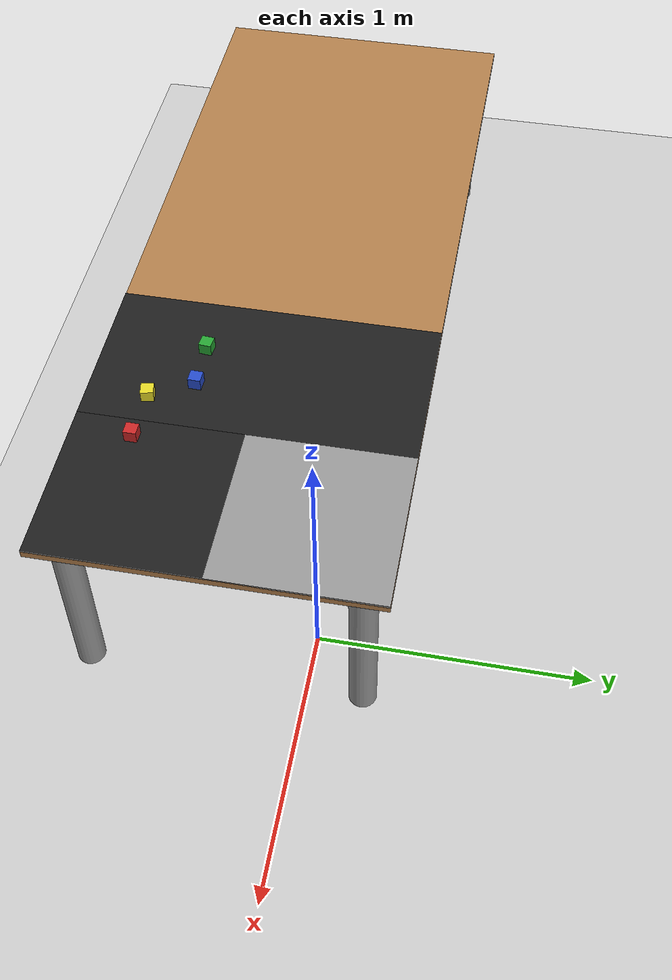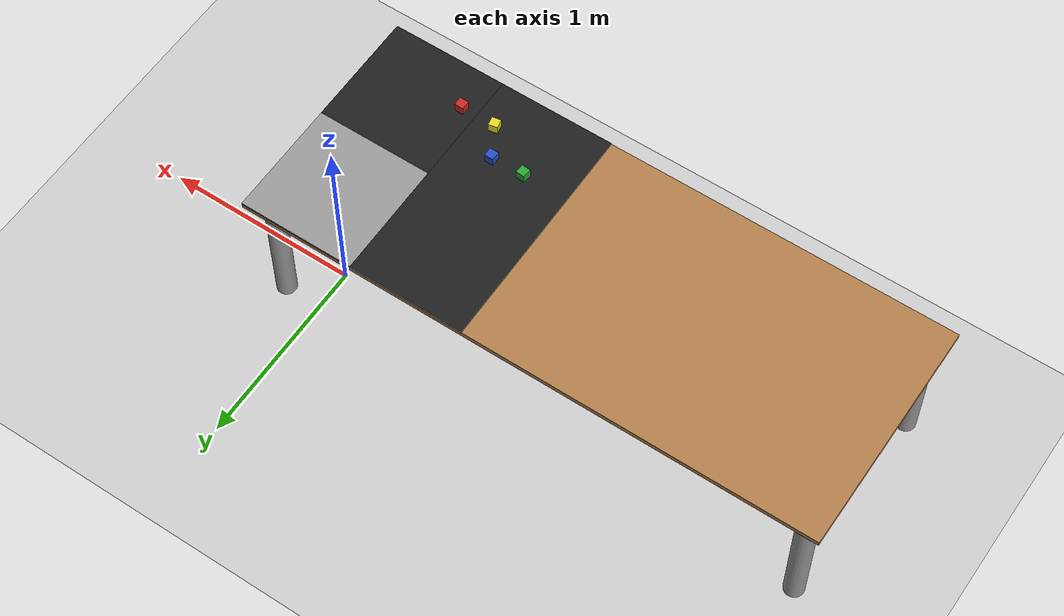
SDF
<sdf version="1.6">
 <world name="default">
  <light name="sun" type="directional">
   <pose>0 0 10 0 -0 0</pose>
   <diffuse>0.8 0.8 0.8 1</diffuse>
   <specular>0.1 0.1 0.1 1</specular>
   <attenuation>
    <range>1000</range>
    <constant>0.9</constant>
    <linear>0.01</linear>
    <quadratic>0.001</quadratic>
   </attenuation>
   <direction>-0.5 0.5 -1</direction>
  </light>
  <model name="ground_plane">
   <static>1</static>
   <link name="link">
    <collision name="collision">
     <geometry><plane><normal>0 0 1</normal><size>100 100</size></plane></geometry>
     <surface><friction><ode><mu>100</mu><mu2>50</mu2></ode></friction></surface>
    </collision>
    <visual name="visual">
     <cast_shadows>0</cast_shadows>
     <geometry><plane><normal>0 0 1</normal><size>100 100</size></plane></geometry>
     <material>
      <script><uri>file://media/materials/scripts/gazebo.material</uri><name>Gazebo/Grey</name></script>
     </material>
    </visual>
   </link>
  </model>
  <gravity>0 0 -9.8</gravity>
  <magnetic_field>6e-06 2.3e-05 -4.2e-05</magnetic_field>
  <atmosphere type="adiabatic"/>
  <physics name="default_physics" default="0" type="ode">
   <max_step_size>0.001</max_step_size>
   <real_time_factor>1</real_time_factor>
   <real_time_update_rate>1000</real_time_update_rate>
  </physics>
  <scene><ambient>0.4 0.4 0.4 1</ambient><background>0.7 0.7 0.7 1</background><shadows>1</shadows></scene>
  <spherical_coordinates>
   <surface_model>EARTH_WGS84</surface_model>
   <latitude_deg>0</latitude_deg>
   <longitude_deg>0</longitude_deg>
   <elevation>0</elevation>
   <heading_deg>0</heading_deg>
  </spherical_coordinates>
  <model name="table_custom_4_2">
   <link name="link">
    <inertial>
     <inertia><ixx>10</ixx><ixy>0</ixy><ixz>0</ixz><iyy>10</iyy><iyz>0</iyz><izz>10</izz></inertia>
     <mass>10</mass>
    </inertial>
    <self_collide>1</self_collide>
    <visual name="ModelPreview_20::link::visual_7">
     <pose>0.6 0 0.746 0 -0 0</pose>
     <geometry><box><size>0.6 1.2 0.01</size></box></geometry>
     <material>
      <script><uri>file://media/materials/scripts/gazebo.material</uri><name>Gazebo/Black</name></script>
      <ambient>0 0 0 1</ambient>
      <diffuse>0 0 0 1</diffuse>
      <specular>0.2 0.2 0.2 1</specular>
      <emissive>0 0 0 1</emissive>
      <shader type="vertex"><normal_map>__default__</normal_map></shader>
     </material>
    </visual>
    <visual name="back_right_leg">
     <pose>-1.4 -0.5 0.36 0 -0 0</pose>
     <geometry><cylinder><radius>0.05</radius><length>0.72</length></cylinder></geometry>
     <material>
      <script><uri>file://media/materials/scripts/gazebo.material</uri><name>Gazebo/Grey</name></script>
      <ambient>0.3 0.3 0.3 1</ambient>
      <diffuse>0.7 0.7 0.7 1</diffuse>
      <specular>0.01 0.01 0.01 1</specular>
      <emissive>0 0 0 1</emissive>
      <shader type="vertex"><normal_map>__default__</normal_map></shader>
     </material>
    </visual>
    <visual name="back_left_leg">
     <pose>-1.4 0.5 0.36 0 -0 0</pose>
     <geometry><cylinder><radius>0.05</radius><length>0.72</length></cylinder></geometry>
     <material>
      <script><uri>file://media/materials/scripts/gazebo.material</uri><name>Gazebo/Grey</name></script>
      <ambient>0.3 0.3 0.3 1</ambient>
      <diffuse>0.7 0.7 0.7 1</diffuse>
      <specular>0.01 0.01 0.01 1</specular>
      <emissive>0 0 0 1</emissive>
      <shader type="vertex"><normal_map>__default__</normal_map></shader>
     </material>
    </visual>
    <visual name="visual1">
     <pose>0 0 0.733 0 -0 0</pose>
     <geometry><box><size>3 1.2 0.026</size></box></geometry>
     <material>
      <script><uri>file://media/materials/scripts/gazebo.material</uri><name>Gazebo/Wood</name></script>
      <ambient>1 1 1 1</ambient>
      <diffuse>1 1 1 1</diffuse>
      <specular>0.2 0.2 0.2 1</specular>
      <emissive>0 0 0 1</emissive>
      <shader type="vertex"><normal_map>__default__</normal_map></shader>
     </material>
    </visual>
    <visual name="ModelPreview_4::link::visual_5">
     <pose>1.2 0.3 0.746 0 -0 0</pose>
     <geometry><box><size>0.6 0.6 0.01</size></box></geometry>
     <material>
      <script><uri>file://media/materials/scripts/gazebo.material</uri><name>Gazebo/Grey</name></script>
      <ambient>0.3 0.3 0.3 1</ambient>
      <diffuse>0.7 0.7 0.7 1</diffuse>
      <specular>0.01 0.01 0.01 1</specular>
      <emissive>0 0 0 1</emissive>
      <shader type="vertex"><normal_map>__default__</normal_map></shader>
     </material>
    </visual>
    <visual name="front_right_leg">
     <pose>1.4 -0.5 0.36 0 -0 0</pose>
     <geometry><cylinder><radius>0.05</radius><length>0.72</length></cylinder></geometry>
     <material>
      <script><uri>file://media/materials/scripts/gazebo.material</uri><name>Gazebo/Grey</name></script>
      <ambient>0.3 0.3 0.3 1</ambient>
      <diffuse>0.7 0.7 0.7 1</diffuse>
      <specular>0.01 0.01 0.01 1</specular>
      <emissive>0 0 0 1</emissive>
      <shader type="vertex"><normal_map>__default__</normal_map></shader>
     </material>
    </visual>
    <visual name="front_left_leg">
     <pose>1.4 0.5 0.36 0 -0 0</pose>
     <geometry><cylinder><radius>0.05</radius><length>0.72</length></cylinder></geometry>
     <material>
      <script><uri>file://media/materials/scripts/gazebo.material</uri><name>Gazebo/Grey</name></script>
      <ambient>0.3 0.3 0.3 1</ambient>
      <diffuse>0.7 0.7 0.7 1</diffuse>
      <specular>0.01 0.01 0.01 1</specular>
      <emissive>0 0 0 1</emissive>
      <shader type="vertex"><normal_map>__default__</normal_map></shader>
     </material>
    </visual>
    <visual name="ModelPreview_20::link::visual_6">
     <pose>1.2 -0.3 0.746 0 -0 0</pose>
     <geometry><box><size>0.6 0.6 0.01</size></box></geometry>
     <material>
      <script><uri>file://media/materials/scripts/gazebo.material</uri><name>Gazebo/Black</name></script>
      <ambient>0 0 0 1</ambient>
      <diffuse>0 0 0 1</diffuse>
      <specular>0.2 0.2 0.2 1</specular>
      <emissive>0 0 0 1</emissive>
      <shader type="vertex"><normal_map>__default__</normal_map></shader>
     </material>
    </visual>
    <collision name="collision_7">
     <pose>0.6 0 0.746 0 -0 0</pose>
     <geometry><box><size>0.6 1.2 0.01</size></box></geometry>
     <surface>
      <friction>
       <ode><mu>1</mu><mu2>1</mu2><fdir1>0 0 0</fdir1><slip1>0</slip1><slip2>0</slip2></ode>
       <torsional>
        <coefficient>1</coefficient>
        <patch_radius>0</patch_radius>
        <surface_radius>0</surface_radius>
        <use_patch_radius>1</use_patch_radius>
        <ode><slip>0</slip></ode>
       </torsional>
      </friction>
      <bounce><restitution_coefficient>0</restitution_coefficient><threshold>1e+06</threshold></bounce>
      <contact>
       <collide_without_contact>0</collide_without_contact>
       <collide_without_contact_bitmask>1</collide_without_contact_bitmask>
       <collide_bitmask>1</collide_bitmask>
       <ode>
        <soft_cfm>0</soft_cfm>
        <soft_erp>0.2</soft_erp>
        <kp>1e+13</kp>
        <kd>1</kd>
        <max_vel>0.01</max_vel>
        <min_depth>0</min_depth>
       </ode>
       <bullet>
        <split_impulse>1</split_impulse>
        <split_impulse_penetration_threshold>-0.01</split_impulse_penetration_threshold>
        <soft_cfm>0</soft_cfm>
        <soft_erp>0.2</soft_erp>
        <kp>1e+13</kp>
        <kd>1</kd>
       </bullet>
      </contact>
     </surface>
    </collision>
    <collision name="surface">
     <pose>0 0 0.733 0 -0 0</pose>
     <geometry><box><size>3 1.2 0.026</size></box></geometry>
     <surface>
      <friction>
       <ode><mu>0.6</mu><mu2>0.6</mu2><fdir1>0 0 0</fdir1><slip1>0</slip1><slip2>0</slip2></ode>
       <torsional>
        <coefficient>1</coefficient>
        <patch_radius>0</patch_radius>
        <surface_radius>0</surface_radius>
        <use_patch_radius>1</use_patch_radius>
        <ode><slip>0</slip></ode>
       </torsional>
      </friction>
      <bounce><restitution_coefficient>0</restitution_coefficient><threshold>1e+06</threshold></bounce>
      <contact>
       <collide_without_contact>0</collide_without_contact>
       <collide_without_contact_bitmask>1</collide_without_contact_bitmask>
       <collide_bitmask>1</collide_bitmask>
       <ode>
        <soft_cfm>0</soft_cfm>
        <soft_erp>0.2</soft_erp>
        <kp>1e+13</kp>
        <kd>1</kd>
        <max_vel>0.01</max_vel>
        <min_depth>0</min_depth>
       </ode>
       <bullet>
        <split_impulse>1</split_impulse>
        <split_impulse_penetration_threshold>-0.01</split_impulse_penetration_threshold>
        <soft_cfm>0</soft_cfm>
        <soft_erp>0.2</soft_erp>
        <kp>1e+13</kp>
        <kd>1</kd>
       </bullet>
      </contact>
     </surface>
    </collision>
    <collision name="collision_5">
     <pose>1.2 0.3 0.746 0 -0 0</pose>
     <geometry><box><size>0.6 0.6 0.01</size></box></geometry>
     <surface>
      <friction>
       <ode><mu>1</mu><mu2>1</mu2><fdir1>0 0 0</fdir1><slip1>0</slip1><slip2>0</slip2></ode>
       <torsional>
        <coefficient>1</coefficient>
        <patch_radius>0</patch_radius>
        <surface_radius>0</surface_radius>
        <use_patch_radius>1</use_patch_radius>
        <ode><slip>0</slip></ode>
       </torsional>
      </friction>
      <bounce><restitution_coefficient>0</restitution_coefficient><threshold>1e+06</threshold></bounce>
      <contact>
       <collide_without_contact>0</collide_without_contact>
       <collide_without_contact_bitmask>1</collide_without_contact_bitmask>
       <collide_bitmask>1</collide_bitmask>
       <ode>
        <soft_cfm>0</soft_cfm>
        <soft_erp>0.2</soft_erp>
        <kp>1e+13</kp>
        <kd>1</kd>
        <max_vel>0.01</max_vel>
        <min_depth>0</min_depth>
       </ode>
       <bullet>
        <split_impulse>1</split_impulse>
        <split_impulse_penetration_threshold>-0.01</split_impulse_penetration_threshold>
        <soft_cfm>0</soft_cfm>
        <soft_erp>0.2</soft_erp>
        <kp>1e+13</kp>
        <kd>1</kd>
       </bullet>
      </contact>
     </surface>
    </collision>
    <collision name="collision_6">
     <pose>1.2 -0.3 0.746 0 -0 0</pose>
     <geometry><box><size>0.6 0.6 0.01</size></box></geometry>
     <surface>
      <friction>
       <ode><mu>1</mu><mu2>1</mu2><fdir1>0 0 0</fdir1><slip1>0</slip1><slip2>0</slip2></ode>
       <torsional>
        <coefficient>1</coefficient>
        <patch_radius>0</patch_radius>
        <surface_radius>0</surface_radius>
        <use_patch_radius>1</use_patch_radius>
        <ode><slip>0</slip></ode>
       </torsional>
      </friction>
      <bounce><restitution_coefficient>0</restitution_coefficient><threshold>1e+06</threshold></bounce>
      <contact>
       <collide_without_contact>0</collide_without_contact>
       <collide_without_contact_bitmask>1</collide_without_contact_bitmask>
       <collide_bitmask>1</collide_bitmask>
       <ode>
        <soft_cfm>0</soft_cfm>
        <soft_erp>0.2</soft_erp>
        <kp>1e+13</kp>
        <kd>1</kd>
        <max_vel>0.01</max_vel>
        <min_depth>0</min_depth>
       </ode>
       <bullet>
        <split_impulse>1</split_impulse>
        <split_impulse_penetration_threshold>-0.01</split_impulse_penetration_threshold>
        <soft_cfm>0</soft_cfm>
        <soft_erp>0.2</soft_erp>
        <kp>1e+13</kp>
        <kd>1</kd>
       </bullet>
      </contact>
     </surface>
    </collision>
    <collision name="front_left_leg">
     <pose>1.4 0.5 0.36 0 -0 0</pose>
     <geometry><cylinder><radius>0.05</radius><length>0.72</length></cylinder></geometry>
     <surface>
      <friction>
       <ode><mu>1</mu><mu2>1</mu2><fdir1>0 0 0</fdir1><slip1>0</slip1><slip2>0</slip2></ode>
       <torsional>
        <coefficient>1</coefficient>
        <patch_radius>0</patch_radius>
        <surface_radius>0</surface_radius>
        <use_patch_radius>1</use_patch_radius>
        <ode><slip>0</slip></ode>
       </torsional>
      </friction>
      <bounce><restitution_coefficient>0</restitution_coefficient><threshold>1e+06</threshold></bounce>
      <contact>
       <collide_without_contact>0</collide_without_contact>
       <collide_without_contact_bitmask>1</collide_without_contact_bitmask>
       <collide_bitmask>1</collide_bitmask>
       <ode>
        <soft_cfm>0</soft_cfm>
        <soft_erp>0.2</soft_erp>
        <kp>1e+13</kp>
        <kd>1</kd>
        <max_vel>0.01</max_vel>
        <min_depth>0</min_depth>
       </ode>
       <bullet>
        <split_impulse>1</split_impulse>
        <split_impulse_penetration_threshold>-0.01</split_impulse_penetration_threshold>
        <soft_cfm>0</soft_cfm>
        <soft_erp>0.2</soft_erp>
        <kp>1e+13</kp>
        <kd>1</kd>
       </bullet>
      </contact>
     </surface>
    </collision>
    <collision name="front_right_leg">
     <pose>1.4 -0.5 0.36 0 -0 0</pose>
     <geometry><cylinder><radius>0.05</radius><length>0.72</length></cylinder></geometry>
     <surface>
      <friction>
       <ode><mu>1</mu><mu2>1</mu2><fdir1>0 0 0</fdir1><slip1>0</slip1><slip2>0</slip2></ode>
       <torsional>
        <coefficient>1</coefficient>
        <patch_radius>0</patch_radius>
        <surface_radius>0</surface_radius>
        <use_patch_radius>1</use_patch_radius>
        <ode><slip>0</slip></ode>
       </torsional>
      </friction>
      <bounce><restitution_coefficient>0</restitution_coefficient><threshold>1e+06</threshold></bounce>
      <contact>
       <collide_without_contact>0</collide_without_contact>
       <collide_without_contact_bitmask>1</collide_without_contact_bitmask>
       <collide_bitmask>1</collide_bitmask>
       <ode>
        <soft_cfm>0</soft_cfm>
        <soft_erp>0.2</soft_erp>
        <kp>1e+13</kp>
        <kd>1</kd>
        <max_vel>0.01</max_vel>
        <min_depth>0</min_depth>
       </ode>
       <bullet>
        <split_impulse>1</split_impulse>
        <split_impulse_penetration_threshold>-0.01</split_impulse_penetration_threshold>
        <soft_cfm>0</soft_cfm>
        <soft_erp>0.2</soft_erp>
        <kp>1e+13</kp>
        <kd>1</kd>
       </bullet>
      </contact>
     </surface>
    </collision>
    <collision name="back_right_leg">
     <pose>-1.4 -0.5 0.36 0 -0 0</pose>
     <geometry><cylinder><radius>0.05</radius><length>0.72</length></cylinder></geometry>
     <surface>
      <friction>
       <ode><mu>1</mu><mu2>1</mu2><fdir1>0 0 0</fdir1><slip1>0</slip1><slip2>0</slip2></ode>
       <torsional>
        <coefficient>1</coefficient>
        <patch_radius>0</patch_radius>
        <surface_radius>0</surface_radius>
        <use_patch_radius>1</use_patch_radius>
        <ode><slip>0</slip></ode>
       </torsional>
      </friction>
      <bounce><restitution_coefficient>0</restitution_coefficient><threshold>1e+06</threshold></bounce>
      <contact>
       <collide_without_contact>0</collide_without_contact>
       <collide_without_contact_bitmask>1</collide_without_contact_bitmask>
       <collide_bitmask>1</collide_bitmask>
       <ode>
        <soft_cfm>0</soft_cfm>
        <soft_erp>0.2</soft_erp>
        <kp>1e+13</kp>
        <kd>1</kd>
        <max_vel>0.01</max_vel>
        <min_depth>0</min_depth>
       </ode>
       <bullet>
        <split_impulse>1</split_impulse>
        <split_impulse_penetration_threshold>-0.01</split_impulse_penetration_threshold>
        <soft_cfm>0</soft_cfm>
        <soft_erp>0.2</soft_erp>
        <kp>1e+13</kp>
        <kd>1</kd>
       </bullet>
      </contact>
     </surface>
    </collision>
    <collision name="back_left_leg">
     <pose>-1.4 0.5 0.36 0 -0 0</pose>
     <geometry><cylinder><radius>0.05</radius><length>0.72</length></cylinder></geometry>
     <surface>
      <friction>
       <ode><mu>1</mu><mu2>1</mu2><fdir1>0 0 0</fdir1><slip1>0</slip1><slip2>0</slip2></ode>
       <torsional>
        <coefficient>1</coefficient>
        <patch_radius>0</patch_radius>
        <surface_radius>0</surface_radius>
        <use_patch_radius>1</use_patch_radius>
        <ode><slip>0</slip></ode>
       </torsional>
      </friction>
      <bounce><restitution_coefficient>0</restitution_coefficient><threshold>1e+06</threshold></bounce>
      <contact>
       <collide_without_contact>0</collide_without_contact>
       <collide_without_contact_bitmask>1</collide_without_contact_bitmask>
       <collide_bitmask>1</collide_bitmask>
       <ode>
        <soft_cfm>0</soft_cfm>
        <soft_erp>0.2</soft_erp>
        <kp>1e+13</kp>
        <kd>1</kd>
        <max_vel>0.01</max_vel>
        <min_depth>0</min_depth>
       </ode>
       <bullet>
        <split_impulse>1</split_impulse>
        <split_impulse_penetration_threshold>-0.01</split_impulse_penetration_threshold>
        <soft_cfm>0</soft_cfm>
        <soft_erp>0.2</soft_erp>
        <kp>1e+13</kp>
        <kd>1</kd>
       </bullet>
      </contact>
     </surface>
    </collision>
   </link>
   <static>0</static>
   <pose>-1.20112 -0.300287 -1.2e-05 -0 -9e-06 5.8e-05</pose>
  </model>
  <model name="cube_custom_red_2">
   <link name="link">
    <pose>-0 0 0.025 0 -0 0</pose>
    <inertial>
     <mass>0.0565</mass>
     <inertia>
      <ixx>2.35e-06</ixx>
      <ixy>0</ixy>
      <ixz>0</ixz>
      <iyy>2.35e-06</iyy>
      <iyz>0</iyz>
      <izz>2.35e-06</izz>
     </inertia>
    </inertial>
    <visual name="visual">
     <geometry><box><size>0.046 0.046 0.046</size></box></geometry>
     <material>
      <script><uri>file://media/materials/scripts/gazebo.material</uri><name>Gazebo/Red</name></script>
      <ambient>1 0 0 0</ambient>
      <diffuse>1 0 0 0</diffuse>
      <specular>0.2 0.2 0.2 1</specular>
      <emissive>0 0 0 1</emissive>
      <shader type="vertex"><normal_map>__default__</normal_map></shader>
     </material>
    </visual>
    <collision name="collision">
     <geometry><box><size>0.046 0.046 0.046</size></box></geometry>
     <surface>
      <friction>
       <ode><mu>1</mu><mu2>1</mu2><fdir1>0 0 0</fdir1><slip1>0</slip1><slip2>0</slip2></ode>
       <torsional>
        <coefficient>10</coefficient>
        <patch_radius>0</patch_radius>
        <surface_radius>0.05</surface_radius>
        <use_patch_radius>0</use_patch_radius>
        <ode><slip>0</slip></ode>
       </torsional>
      </friction>
      <bounce><restitution_coefficient>0</restitution_coefficient><threshold>1e+06</threshold></bounce>
      <contact>
       <collide_without_contact>0</collide_without_contact>
       <collide_without_contact_bitmask>1</collide_without_contact_bitmask>
       <collide_bitmask>1</collide_bitmask>
       <ode>
        <soft_cfm>0</soft_cfm>
        <soft_erp>0.2</soft_erp>
        <kp>100000</kp>
        <kd>1</kd>
        <max_vel>1</max_vel>
        <min_depth>0.001</min_depth>
       </ode>
       <bullet>
        <split_impulse>1</split_impulse>
        <split_impulse_penetration_threshold>-0.01</split_impulse_penetration_threshold>
        <soft_cfm>0</soft_cfm>
        <soft_erp>0.2</soft_erp>
        <kp>100000</kp>
        <kd>1</kd>
       </bullet>
      </contact>
     </surface>
    </collision>
   </link>
   <static>0</static>
   <pose>-0.224199 -0.677866 0.748966 9e-06 0.001058 -0.01044</pose>
  </model>
  <model name="cube_custom_green_0">
   <link name="link">
    <pose>-0 -0 0.025 0 -0 0</pose>
    <inertial>
     <mass>0.0565</mass>
     <inertia>
      <ixx>2.35e-06</ixx>
      <ixy>0</ixy>
      <ixz>0</ixz>
      <iyy>2.35e-06</iyy>
      <iyz>0</iyz>
      <izz>2.35e-06</izz>
     </inertia>
    </inertial>
    <visual name="visual">
     <geometry><box><size>0.046 0.046 0.046</size></box></geometry>
     <material>
      <script><uri>file://media/materials/scripts/gazebo.material</uri><name>Gazebo/Green</name></script>
      <ambient>0 1 0 0</ambient>
      <diffuse>0 1 0 0</diffuse>
      <specular>0.2 0.2 0.2 1</specular>
      <emissive>0 0 0 1</emissive>
      <shader type="vertex"><normal_map>__default__</normal_map></shader>
     </material>
    </visual>
    <collision name="collision">
     <geometry><box><size>0.046 0.046 0.046</size></box></geometry>
     <surface>
      <friction>
       <ode><mu>1</mu><mu2>1</mu2><fdir1>0 0 0</fdir1><slip1>0</slip1><slip2>0</slip2></ode>
       <torsional>
        <coefficient>10</coefficient>
        <patch_radius>0</patch_radius>
        <surface_radius>0.05</surface_radius>
        <use_patch_radius>0</use_patch_radius>
        <ode><slip>0</slip></ode>
       </torsional>
      </friction>
      <bounce><restitution_coefficient>0</restitution_coefficient><threshold>1e+06</threshold></bounce>
      <contact>
       <collide_without_contact>0</collide_without_contact>
       <collide_without_contact_bitmask>1</collide_without_contact_bitmask>
       <collide_bitmask>1</collide_bitmask>
       <ode>
        <soft_cfm>0</soft_cfm>
        <soft_erp>0.2</soft_erp>
        <kp>100000</kp>
        <kd>1</kd>
        <max_vel>1</max_vel>
        <min_depth>0.001</min_depth>
       </ode>
       <bullet>
        <split_impulse>1</split_impulse>
        <split_impulse_penetration_threshold>-0.01</split_impulse_penetration_threshold>
        <soft_cfm>0</soft_cfm>
        <soft_erp>0.2</soft_erp>
        <kp>100000</kp>
        <kd>1</kd>
       </bullet>
      </contact>
     </surface>
    </collision>
   </link>
   <static>0</static>
   <pose>-0.667762 -0.525077 0.748987 -8e-05 0.000206 -0.089157</pose>
  </model>
  <model name="cube_custom_blue_1">
   <link name="link">
    <pose>-0 0 0.025 0 -0 0</pose>
    <inertial>
     <mass>0.0565</mass>
     <inertia>
      <ixx>2.35e-06</ixx>
      <ixy>0</ixy>
      <ixz>0</ixz>
      <iyy>2.35e-06</iyy>
      <iyz>0</iyz>
      <izz>2.35e-06</izz>
     </inertia>
    </inertial>
    <visual name="visual">
     <geometry><box><size>0.046 0.046 0.046</size></box></geometry>
     <material>
      <script><uri>file://media/materials/scripts/gazebo.material</uri><name>Gazebo/Blue</name></script>
      <ambient>0 0 1 0</ambient>
      <diffuse>0 0 1 0</diffuse>
      <specular>0.2 0.2 0.2 1</specular>
      <emissive>0 0 0 1</emissive>
      <shader type="vertex"><normal_map>__default__</normal_map></shader>
     </material>
    </visual>
    <collision name="collision">
     <geometry><box><size>0.046 0.046 0.046</size></box></geometry>
     <surface>
      <friction>
       <ode><mu>1</mu><mu2>1</mu2><fdir1>0 0 0</fdir1><slip1>0</slip1><slip2>0</slip2></ode>
       <torsional>
        <coefficient>10</coefficient>
        <patch_radius>0</patch_radius>
        <surface_radius>0.05</surface_radius>
        <use_patch_radius>0</use_patch_radius>
        <ode><slip>0</slip></ode>
       </torsional>
      </friction>
      <bounce><restitution_coefficient>0</restitution_coefficient><threshold>1e+06</threshold></bounce>
      <contact>
       <collide_without_contact>0</collide_without_contact>
       <collide_without_contact_bitmask>1</collide_without_contact_bitmask>
       <collide_bitmask>1</collide_bitmask>
       <ode>
        <soft_cfm>0</soft_cfm>
        <soft_erp>0.2</soft_erp>
        <kp>100000</kp>
        <kd>1</kd>
        <max_vel>1</max_vel>
        <min_depth>0.001</min_depth>
       </ode>
       <bullet>
        <split_impulse>1</split_impulse>
        <split_impulse_penetration_threshold>-0.01</split_impulse_penetration_threshold>
        <soft_cfm>0</soft_cfm>
        <soft_erp>0.2</soft_erp>
        <kp>100000</kp>
        <kd>1</kd>
       </bullet>
      </contact>
     </surface>
    </collision>
   </link>
   <static>0</static>
   <pose>-0.496826 -0.522221 0.748965 -4.6e-05 -0.000308 -0.033446</pose>
  </model>
  <model name="cube_custom_yellow_1">
   <link name="link">
    <pose>-0 0 0.025 0 -0 0</pose>
    <inertial>
     <mass>0.0565</mass>
     <inertia>
      <ixx>2.35e-06</ixx>
      <ixy>0</ixy>
      <ixz>0</ixz>
      <iyy>2.35e-06</iyy>
      <iyz>0</iyz>
      <izz>2.35e-06</izz>
     </inertia>
    </inertial>
    <visual name="visual">
     <geometry><box><size>0.046 0.046 0.046</size></box></geometry>
     <material>
      <script><uri>file://media/materials/scripts/gazebo.material</uri><name>Gazebo/Yellow</name></script>
      <ambient>1 1 0 0</ambient>
      <diffuse>1 1 0 0</diffuse>
      <specular>0.2 0.2 0.2 1</specular>
      <emissive>0 0 0 1</emissive>
      <shader type="vertex"><normal_map>__default__</normal_map></shader>
     </material>
    </visual>
    <collision name="collision">
     <geometry><box><size>0.046 0.046 0.046</size></box></geometry>
     <surface>
      <friction>
       <ode><mu>1</mu><mu2>1</mu2><fdir1>0 0 0</fdir1><slip1>0</slip1><slip2>0</slip2></ode>
       <torsional>
        <coefficient>10</coefficient>
        <patch_radius>0</patch_radius>
        <surface_radius>0.05</surface_radius>
        <use_patch_radius>0</use_patch_radius>
        <ode><slip>0</slip></ode>
       </torsional>
      </friction>
      <bounce><restitution_coefficient>0</restitution_coefficient><threshold>1e+06</threshold></bounce>
      <contact>
       <collide_without_contact>0</collide_without_contact>
       <collide_without_contact_bitmask>1</collide_without_contact_bitmask>
       <collide_bitmask>1</collide_bitmask>
       <ode>
        <soft_cfm>0</soft_cfm>
        <soft_erp>0.2</soft_erp>
        <kp>100000</kp>
        <kd>1</kd>
        <max_vel>1</max_vel>
        <min_depth>0.001</min_depth>
       </ode>
       <bullet>
        <split_impulse>1</split_impulse>
        <split_impulse_penetration_threshold>-0.01</split_impulse_penetration_threshold>
        <soft_cfm>0</soft_cfm>
        <soft_erp>0.2</soft_erp>
        <kp>100000</kp>
        <kd>1</kd>
       </bullet>
      </contact>
     </surface>
    </collision>
   </link>
   <static>0</static>
   <pose>-0.410866 -0.674114 0.748982 3e-06 -4.1e-05 0.182727</pose>
  </model>
 </world>
</sdf>
